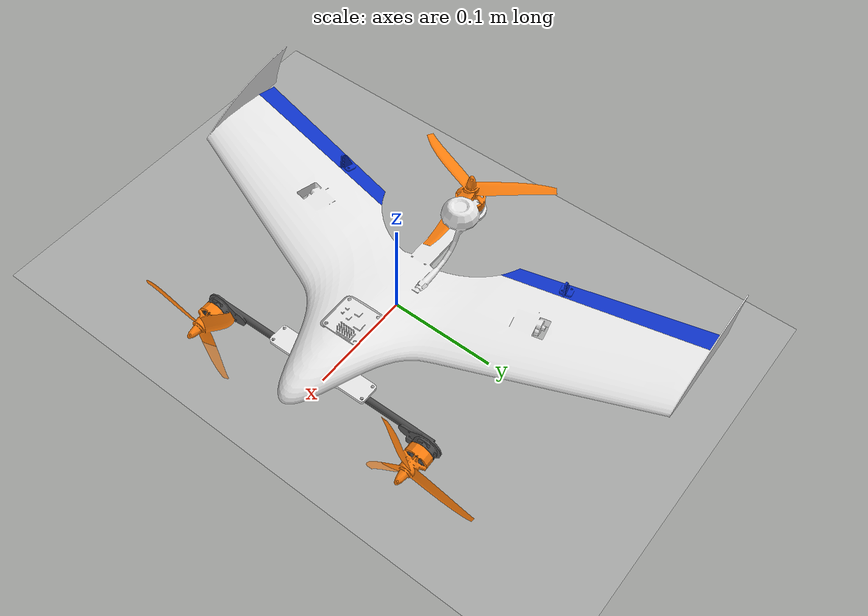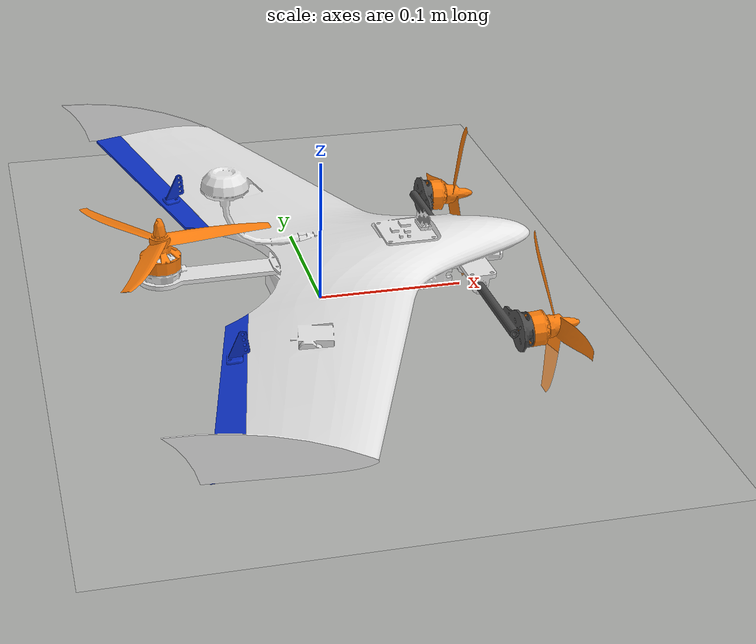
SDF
<sdf version="1.6">
 <world name="default">
  <model name="ground_plane">
   <static>1</static>
   <link name="link">
    <collision name="collision">
     <geometry><plane><normal>0 0 1</normal><size>100 100</size></plane></geometry>
     <surface>
      <contact><collide_bitmask>65535</collide_bitmask></contact>
      <friction><ode><mu>100</mu><mu2>50</mu2></ode></friction>
     </surface>
    </collision>
    <visual name="visual">
     <cast_shadows>0</cast_shadows>
     <geometry><plane><normal>0 0 1</normal><size>100 100</size></plane></geometry>
     <material>
      <script><uri>file://media/materials/scripts/gazebo.material</uri><name>Gazebo/Grey</name></script>
     </material>
    </visual>
   </link>
  </model>
  <model name="MiniHawk">
   <link name="link_1">
    <inertial>
     <mass>0.388</mass>
     <inertia>
      <ixx>0.107401</ixx>
      <ixy>-0.0018686</ixy>
      <ixz>-0.0144101</ixz>
      <iyy>0.176693</iyy>
      <iyz>-0.0010212</iyz>
      <izz>0.264048</izz>
     </inertia>
     <pose>0.013118 0.000197 0.004436 0 -0 0</pose>
    </inertial>
    <pose>0 0 0 3.14159 -0 0</pose>
    <visual name="visual">
     <geometry><mesh><uri>/home/steve/Desktop/OBJ2/MiniHawkBase.obj</uri><scale>1 1 1</scale></mesh></geometry>
     <material>
      <lighting>1</lighting>
      <script><uri>file://media/materials/scripts/gazebo.material</uri><name>Gazebo/White</name></script>
      <shader type="pixel"><normal_map>__default__</normal_map></shader>
      <emissive>0 0 0 1</emissive>
      <ambient>0.9 0.9 0.9 1</ambient>
      <diffuse>0.9 0.9 0.9 1</diffuse>
      <specular>0.01 0.01 0.01 1</specular>
     </material>
    </visual>
    <collision name="collision">
     <geometry><mesh><uri>/home/steve/Desktop/OBJ2/MiniHawkBase.obj</uri><scale>1 1 1</scale></mesh></geometry>
     <surface>
      <friction>
       <ode><mu>1</mu><mu2>1</mu2><fdir1>0 0 0</fdir1><slip1>0</slip1><slip2>0</slip2></ode>
       <torsional>
        <coefficient>1</coefficient>
        <patch_radius>0</patch_radius>
        <surface_radius>0</surface_radius>
        <use_patch_radius>1</use_patch_radius>
        <ode><slip>0</slip></ode>
       </torsional>
      </friction>
      <bounce><restitution_coefficient>0</restitution_coefficient><threshold>1e+06</threshold></bounce>
      <contact>
       <collide_without_contact>0</collide_without_contact>
       <collide_without_contact_bitmask>1</collide_without_contact_bitmask>
       <collide_bitmask>1</collide_bitmask>
       <ode>
        <soft_cfm>0</soft_cfm>
        <soft_erp>0.2</soft_erp>
        <kp>1e+13</kp>
        <kd>1</kd>
        <max_vel>0.01</max_vel>
        <min_depth>0</min_depth>
       </ode>
       <bullet>
        <split_impulse>1</split_impulse>
        <split_impulse_penetration_threshold>-0.01</split_impulse_penetration_threshold>
        <soft_cfm>0</soft_cfm>
        <soft_erp>0.2</soft_erp>
        <kp>1e+13</kp>
        <kd>1</kd>
       </bullet>
      </contact>
     </surface>
    </collision>
   </link>
   <link name="link_2">
    <inertial>
     <mass>0.002</mass>
     <inertia>
      <ixx>0.0059408</ixx>
      <ixy>-0.003228</ixy>
      <ixz>1.85e-05</ixz>
      <iyy>0.0018158</iyy>
      <iyz>3.22e-05</iyz>
      <izz>0.0077561</izz>
     </inertia>
     <pose>-0.094427 -0.164548 0.000979 0 -0 0</pose>
    </inertial>
    <pose>0 0 0 -3.14159 0 0</pose>
    <visual name="visual">
     <geometry>
      <mesh><uri>/home/steve/Desktop/OBJ2/MiniHawkElevonLeft.obj</uri><scale>1 1 1</scale></mesh>
     </geometry>
     <material>
      <lighting>1</lighting>
      <script><uri>file://media/materials/scripts/gazebo.material</uri><name>Gazebo/Grey</name></script>
      <shader type="pixel"><normal_map>__default__</normal_map></shader>
      <emissive>0 0 0 1</emissive>
      <ambient>0.05 0.2 0.8 1</ambient>
      <diffuse>0.05 0.2 0.8 1</diffuse>
      <specular>0.01 0.01 0.01 1</specular>
     </material>
    </visual>
    <collision name="collision">
     <geometry>
      <mesh><uri>/home/steve/Desktop/OBJ2/MiniHawkElevonLeft.obj</uri><scale>1 1 1</scale></mesh>
     </geometry>
     <surface>
      <friction>
       <ode><mu>1</mu><mu2>1</mu2><fdir1>0 0 0</fdir1><slip1>0</slip1><slip2>0</slip2></ode>
       <torsional>
        <coefficient>1</coefficient>
        <patch_radius>0</patch_radius>
        <surface_radius>0</surface_radius>
        <use_patch_radius>1</use_patch_radius>
        <ode><slip>0</slip></ode>
       </torsional>
      </friction>
      <bounce><restitution_coefficient>0</restitution_coefficient><threshold>1e+06</threshold></bounce>
      <contact>
       <collide_without_contact>0</collide_without_contact>
       <collide_without_contact_bitmask>1</collide_without_contact_bitmask>
       <collide_bitmask>1</collide_bitmask>
       <ode>
        <soft_cfm>0</soft_cfm>
        <soft_erp>0.2</soft_erp>
        <kp>1e+13</kp>
        <kd>1</kd>
        <max_vel>0.01</max_vel>
        <min_depth>0</min_depth>
       </ode>
       <bullet>
        <split_impulse>1</split_impulse>
        <split_impulse_penetration_threshold>-0.01</split_impulse_penetration_threshold>
        <soft_cfm>0</soft_cfm>
        <soft_erp>0.2</soft_erp>
        <kp>1e+13</kp>
        <kd>1</kd>
       </bullet>
      </contact>
     </surface>
    </collision>
   </link>
   <link name="link_3">
    <inertial>
     <mass>0.002</mass>
     <inertia>
      <ixx>0.0059408</ixx>
      <ixy>0.003228</ixy>
      <ixz>1.85e-05</ixz>
      <iyy>0.0018158</iyy>
      <iyz>-3.22e-05</iyz>
      <izz>0.0077561</izz>
     </inertia>
     <pose>-0.094427 0.164548 0.000979 0 -0 0</pose>
    </inertial>
    <pose>0 0 0 3.14159 -0 0</pose>
    <visual name="visual">
     <geometry>
      <mesh><uri>/home/steve/Desktop/OBJ2/MiniHawkElevonRight.obj</uri><scale>1 1 1</scale></mesh>
     </geometry>
     <material>
      <lighting>1</lighting>
      <script><uri>file://media/materials/scripts/gazebo.material</uri><name>Gazebo/Grey</name></script>
      <shader type="pixel"><normal_map>__default__</normal_map></shader>
      <emissive>0 0 0 1</emissive>
      <ambient>0.05 0.2 0.8 1</ambient>
      <diffuse>0.05 0.2 0.8 1</diffuse>
      <specular>0.01 0.01 0.01 1</specular>
     </material>
    </visual>
    <collision name="collision">
     <geometry>
      <mesh><uri>/home/steve/Desktop/OBJ2/MiniHawkElevonRight.obj</uri><scale>1 1 1</scale></mesh>
     </geometry>
     <surface>
      <friction>
       <ode><mu>1</mu><mu2>1</mu2><fdir1>0 0 0</fdir1><slip1>0</slip1><slip2>0</slip2></ode>
       <torsional>
        <coefficient>1</coefficient>
        <patch_radius>0</patch_radius>
        <surface_radius>0</surface_radius>
        <use_patch_radius>1</use_patch_radius>
        <ode><slip>0</slip></ode>
       </torsional>
      </friction>
      <bounce><restitution_coefficient>0</restitution_coefficient><threshold>1e+06</threshold></bounce>
      <contact>
       <collide_without_contact>0</collide_without_contact>
       <collide_without_contact_bitmask>1</collide_without_contact_bitmask>
       <collide_bitmask>1</collide_bitmask>
       <ode>
        <soft_cfm>0</soft_cfm>
        <soft_erp>0.2</soft_erp>
        <kp>1e+13</kp>
        <kd>1</kd>
        <max_vel>0.01</max_vel>
        <min_depth>0</min_depth>
       </ode>
       <bullet>
        <split_impulse>1</split_impulse>
        <split_impulse_penetration_threshold>-0.01</split_impulse_penetration_threshold>
        <soft_cfm>0</soft_cfm>
        <soft_erp>0.2</soft_erp>
        <kp>1e+13</kp>
        <kd>1</kd>
       </bullet>
      </contact>
     </surface>
    </collision>
   </link>
   <link name="link_4">
    <inertial>
     <mass>0.014</mass>
     <inertia>
      <ixx>0.0146583</ixx>
      <ixy>0.0148643</ixy>
      <ixz>-0.0019927</ixz>
      <iyy>0.0164121</iyy>
      <iyz>0.0018312</iyz>
      <izz>0.0305175</izz>
     </inertia>
     <pose>0.108611 -0.099554 0.013446 0 -0 0</pose>
    </inertial>
    <pose>0 0 0 3.14159 -0 0</pose>
    <visual name="visual">
     <geometry><mesh><uri>/home/steve/Desktop/OBJ2/MiniHawkArm.obj</uri><scale>1 1 1</scale></mesh></geometry>
     <material>
      <lighting>1</lighting>
      <script><uri>file://media/materials/scripts/gazebo.material</uri><name>Gazebo/DarkGrey</name></script>
      <shader type="pixel"><normal_map>__default__</normal_map></shader>
     </material>
    </visual>
    <collision name="collision">
     <geometry><mesh><uri>/home/steve/Desktop/OBJ2/MiniHawkArm.obj</uri><scale>1 1 1</scale></mesh></geometry>
     <surface>
      <friction>
       <ode><mu>1</mu><mu2>1</mu2><fdir1>0 0 0</fdir1><slip1>0</slip1><slip2>0</slip2></ode>
       <torsional>
        <coefficient>1</coefficient>
        <patch_radius>0</patch_radius>
        <surface_radius>0</surface_radius>
        <use_patch_radius>1</use_patch_radius>
        <ode><slip>0</slip></ode>
       </torsional>
      </friction>
      <bounce><restitution_coefficient>0</restitution_coefficient><threshold>1e+06</threshold></bounce>
      <contact>
       <collide_without_contact>0</collide_without_contact>
       <collide_without_contact_bitmask>1</collide_without_contact_bitmask>
       <collide_bitmask>1</collide_bitmask>
       <ode>
        <soft_cfm>0</soft_cfm>
        <soft_erp>0.2</soft_erp>
        <kp>1e+13</kp>
        <kd>1</kd>
        <max_vel>0.01</max_vel>
        <min_depth>0</min_depth>
       </ode>
       <bullet>
        <split_impulse>1</split_impulse>
        <split_impulse_penetration_threshold>-0.01</split_impulse_penetration_threshold>
        <soft_cfm>0</soft_cfm>
        <soft_erp>0.2</soft_erp>
        <kp>1e+13</kp>
        <kd>1</kd>
       </bullet>
      </contact>
     </surface>
    </collision>
   </link>
   <link name="link_5">
    <inertial>
     <mass>0.014</mass>
     <inertia>
      <ixx>0.0146583</ixx>
      <ixy>0.0148643</ixy>
      <ixz>-0.0019927</ixz>
      <iyy>0.0164121</iyy>
      <iyz>0.0018312</iyz>
      <izz>0.0305175</izz>
     </inertia>
     <pose>0.108611 -0.099554 0.013446 0 -0 0</pose>
    </inertial>
    <pose>0 0 -0.026 0 -0 0</pose>
    <visual name="visual">
     <geometry><mesh><uri>/home/steve/Desktop/OBJ2/MiniHawkArm.obj</uri><scale>1 1 1</scale></mesh></geometry>
     <material>
      <lighting>1</lighting>
      <script><uri>file://media/materials/scripts/gazebo.material</uri><name>Gazebo/DarkGrey</name></script>
      <shader type="pixel"><normal_map>__default__</normal_map></shader>
     </material>
    </visual>
    <collision name="collision">
     <geometry><mesh><uri>/home/steve/Desktop/OBJ2/MiniHawkArm.obj</uri><scale>1 1 1</scale></mesh></geometry>
     <surface>
      <friction>
       <ode><mu>1</mu><mu2>1</mu2><fdir1>0 0 0</fdir1><slip1>0</slip1><slip2>0</slip2></ode>
       <torsional>
        <coefficient>1</coefficient>
        <patch_radius>0</patch_radius>
        <surface_radius>0</surface_radius>
        <use_patch_radius>1</use_patch_radius>
        <ode><slip>0</slip></ode>
       </torsional>
      </friction>
      <bounce><restitution_coefficient>0</restitution_coefficient><threshold>1e+06</threshold></bounce>
      <contact>
       <collide_without_contact>0</collide_without_contact>
       <collide_without_contact_bitmask>1</collide_without_contact_bitmask>
       <collide_bitmask>1</collide_bitmask>
       <ode>
        <soft_cfm>0</soft_cfm>
        <soft_erp>0.2</soft_erp>
        <kp>1e+13</kp>
        <kd>1</kd>
        <max_vel>0.01</max_vel>
        <min_depth>0</min_depth>
       </ode>
       <bullet>
        <split_impulse>1</split_impulse>
        <split_impulse_penetration_threshold>-0.01</split_impulse_penetration_threshold>
        <soft_cfm>0</soft_cfm>
        <soft_erp>0.2</soft_erp>
        <kp>1e+13</kp>
        <kd>1</kd>
       </bullet>
      </contact>
     </surface>
    </collision>
   </link>
   <link name="link_6">
    <inertial>
     <mass>0.016</mass>
     <inertia>
      <ixx>0.0005953</ixx>
      <ixy>0</ixy>
      <ixz>-0.0028139</ixz>
      <iyy>0.0199553</iyy>
      <iyz>0</iyz>
      <izz>0.0194985</izz>
     </inertia>
     <pose>-0.11 0 -0.015988 0 -0 0</pose>
    </inertial>
    <pose>0 0 0 3.14159 -0 0</pose>
    <visual name="visual">
     <geometry><mesh><uri>/home/steve/Desktop/OBJ2/MiniHawkPropB.obj</uri><scale>1 1 1</scale></mesh></geometry>
     <material>
      <lighting>1</lighting>
      <script><uri>file://media/materials/scripts/gazebo.material</uri><name>Gazebo/Grey</name></script>
      <shader type="pixel"><normal_map>__default__</normal_map></shader>
      <ambient>1 0.5 0.05 1</ambient>
      <diffuse>1 0.5 0.05 1</diffuse>
      <specular>0.5 0.5 0.5 1</specular>
      <emissive>0 0 0 1</emissive>
     </material>
    </visual>
    <collision name="collision">
     <geometry><mesh><uri>/home/steve/Desktop/OBJ2/MiniHawkPropB.obj</uri><scale>1 1 1</scale></mesh></geometry>
     <surface>
      <friction>
       <ode><mu>1</mu><mu2>1</mu2><fdir1>0 0 0</fdir1><slip1>0</slip1><slip2>0</slip2></ode>
       <torsional>
        <coefficient>1</coefficient>
        <patch_radius>0</patch_radius>
        <surface_radius>0</surface_radius>
        <use_patch_radius>1</use_patch_radius>
        <ode><slip>0</slip></ode>
       </torsional>
      </friction>
      <bounce><restitution_coefficient>0</restitution_coefficient><threshold>1e+06</threshold></bounce>
      <contact>
       <collide_without_contact>0</collide_without_contact>
       <collide_without_contact_bitmask>1</collide_without_contact_bitmask>
       <collide_bitmask>1</collide_bitmask>
       <ode>
        <soft_cfm>0</soft_cfm>
        <soft_erp>0.2</soft_erp>
        <kp>1e+13</kp>
        <kd>1</kd>
        <max_vel>0.01</max_vel>
        <min_depth>0</min_depth>
       </ode>
       <bullet>
        <split_impulse>1</split_impulse>
        <split_impulse_penetration_threshold>-0.01</split_impulse_penetration_threshold>
        <soft_cfm>0</soft_cfm>
        <soft_erp>0.2</soft_erp>
        <kp>1e+13</kp>
        <kd>1</kd>
       </bullet>
      </contact>
     </surface>
    </collision>
   </link>
   <link name="link_7">
    <inertial>
     <mass>0.012</mass>
     <inertia>
      <ixx>0.0146902</ixx>
      <ixy>0.0160783</ixy>
      <ixz>-0.0020598</ixz>
      <iyy>0.0185055</iyy>
      <iyz>0.0018297</iyz>
      <izz>0.0325512</izz>
     </inertia>
     <pose>0.123851 -0.109999 0.014094 0 -0 0</pose>
    </inertial>
    <pose>0 0 0 3.14159 -0 0</pose>
    <visual name="visual">
     <geometry><mesh><uri>/home/steve/Desktop/OBJ2/MiniHawkPropA.obj</uri><scale>1 1 1</scale></mesh></geometry>
     <material>
      <lighting>1</lighting>
      <script><uri>file://media/materials/scripts/gazebo.material</uri><name>Gazebo/Grey</name></script>
      <shader type="pixel"><normal_map>__default__</normal_map></shader>
      <ambient>1 0.5 0.05 1</ambient>
      <diffuse>1 0.5 0.05 1</diffuse>
      <specular>0.5 0.5 0.5 1</specular>
      <emissive>0 0 0 1</emissive>
     </material>
    </visual>
    <collision name="collision">
     <geometry><mesh><uri>/home/steve/Desktop/OBJ2/MiniHawkPropA.obj</uri><scale>1 1 1</scale></mesh></geometry>
     <surface>
      <friction>
       <ode><mu>1</mu><mu2>1</mu2><fdir1>0 0 0</fdir1><slip1>0</slip1><slip2>0</slip2></ode>
       <torsional>
        <coefficient>1</coefficient>
        <patch_radius>0</patch_radius>
        <surface_radius>0</surface_radius>
        <use_patch_radius>1</use_patch_radius>
        <ode><slip>0</slip></ode>
       </torsional>
      </friction>
      <bounce><restitution_coefficient>0</restitution_coefficient><threshold>1e+06</threshold></bounce>
      <contact>
       <collide_without_contact>0</collide_without_contact>
       <collide_without_contact_bitmask>1</collide_without_contact_bitmask>
       <collide_bitmask>1</collide_bitmask>
       <ode>
        <soft_cfm>0</soft_cfm>
        <soft_erp>0.2</soft_erp>
        <kp>1e+13</kp>
        <kd>1</kd>
        <max_vel>0.01</max_vel>
        <min_depth>0</min_depth>
       </ode>
       <bullet>
        <split_impulse>1</split_impulse>
        <split_impulse_penetration_threshold>-0.01</split_impulse_penetration_threshold>
        <soft_cfm>0</soft_cfm>
        <soft_erp>0.2</soft_erp>
        <kp>1e+13</kp>
        <kd>1</kd>
       </bullet>
      </contact>
     </surface>
    </collision>
   </link>
   <link name="link_8">
    <inertial>
     <mass>0.012</mass>
     <inertia>
      <ixx>0.0146902</ixx>
      <ixy>0.0160783</ixy>
      <ixz>-0.0020598</ixz>
      <iyy>0.0185055</iyy>
      <iyz>0.0018297</iyz>
      <izz>0.0325512</izz>
     </inertia>
     <pose>0.123851 -0.109999 0.014094 0 -0 0</pose>
    </inertial>
    <pose>0 0 -0.02635 0 -0 0</pose>
    <visual name="visual">
     <geometry><mesh><uri>/home/steve/Desktop/OBJ2/MiniHawkPropA.obj</uri><scale>1 1 1</scale></mesh></geometry>
     <material>
      <lighting>1</lighting>
      <script><uri>file://media/materials/scripts/gazebo.material</uri><name>Gazebo/Grey</name></script>
      <shader type="pixel"><normal_map>__default__</normal_map></shader>
      <ambient>1 0.5 0.05 1</ambient>
      <diffuse>1 0.5 0.05 1</diffuse>
      <specular>0.5 0.5 0.5 1</specular>
      <emissive>0 0 0 1</emissive>
     </material>
    </visual>
    <collision name="collision">
     <geometry><mesh><uri>/home/steve/Desktop/OBJ2/MiniHawkPropA.obj</uri><scale>1 1 1</scale></mesh></geometry>
     <surface>
      <friction>
       <ode><mu>1</mu><mu2>1</mu2><fdir1>0 0 0</fdir1><slip1>0</slip1><slip2>0</slip2></ode>
       <torsional>
        <coefficient>1</coefficient>
        <patch_radius>0</patch_radius>
        <surface_radius>0</surface_radius>
        <use_patch_radius>1</use_patch_radius>
        <ode><slip>0</slip></ode>
       </torsional>
      </friction>
      <bounce><restitution_coefficient>0</restitution_coefficient><threshold>1e+06</threshold></bounce>
      <contact>
       <collide_without_contact>0</collide_without_contact>
       <collide_without_contact_bitmask>1</collide_without_contact_bitmask>
       <collide_bitmask>1</collide_bitmask>
       <ode>
        <soft_cfm>0</soft_cfm>
        <soft_erp>0.2</soft_erp>
        <kp>1e+13</kp>
        <kd>1</kd>
        <max_vel>0.01</max_vel>
        <min_depth>0</min_depth>
       </ode>
       <bullet>
        <split_impulse>1</split_impulse>
        <split_impulse_penetration_threshold>-0.01</split_impulse_penetration_threshold>
        <soft_cfm>0</soft_cfm>
        <soft_erp>0.2</soft_erp>
        <kp>1e+13</kp>
        <kd>1</kd>
       </bullet>
      </contact>
     </surface>
    </collision>
   </link>
   <joint name="link_1_JOINT_0" type="revolute">
    <parent>link_1</parent>
    <child>link_6</child>
    <pose>-0.11 0 0 0 -0 0</pose>
    <axis>
     <xyz>0 0 1</xyz>
     <use_parent_model_frame>0</use_parent_model_frame>
     <limit>
      <lower>-1.79769e+308</lower>
      <upper>1.79769e+308</upper>
      <effort>-1</effort>
      <velocity>-1</velocity>
     </limit>
     <dynamics>
      <spring_reference>0</spring_reference>
      <spring_stiffness>0</spring_stiffness>
      <damping>0</damping>
      <friction>0</friction>
     </dynamics>
    </axis>
    <physics>
     <ode><limit><cfm>0</cfm><erp>0.2</erp></limit><suspension><cfm>0</cfm><erp>0.2</erp></suspension></ode>
    </physics>
   </joint>
   <joint name="link_1_JOINT_1" type="revolute">
    <parent>link_1</parent>
    <child>link_2</child>
    <pose>-0.064008 -0.065469 0.002308 0 -0 0</pose>
    <axis>
     <xyz>0.039484 0.184531 0.002244</xyz>
     <use_parent_model_frame>0</use_parent_model_frame>
     <limit><lower>-0.79</lower><upper>0.52</upper><effort>-1</effort><velocity>-1</velocity></limit>
     <dynamics>
      <spring_reference>0</spring_reference>
      <spring_stiffness>0</spring_stiffness>
      <damping>0</damping>
      <friction>0</friction>
     </dynamics>
    </axis>
    <physics>
     <ode><limit><cfm>0</cfm><erp>0.2</erp></limit><suspension><cfm>0</cfm><erp>0.2</erp></suspension></ode>
    </physics>
   </joint>
   <joint name="link_1_JOINT_2" type="revolute">
    <parent>link_1</parent>
    <child>link_3</child>
    <pose>-0.064008 0.065469 0.002308 0 -0 0</pose>
    <axis>
     <xyz>0.039484 -0.184531 0.002244</xyz>
     <use_parent_model_frame>0</use_parent_model_frame>
     <limit><lower>-0.52</lower><upper>0.79</upper><effort>-1</effort><velocity>-1</velocity></limit>
     <dynamics>
      <spring_reference>0</spring_reference>
      <spring_stiffness>0</spring_stiffness>
      <damping>0</damping>
      <friction>0</friction>
     </dynamics>
    </axis>
    <physics>
     <ode><limit><cfm>0</cfm><erp>0.2</erp></limit><suspension><cfm>0</cfm><erp>0.2</erp></suspension></ode>
    </physics>
   </joint>
   <joint name="link_1_JOINT_3" type="revolute">
    <parent>link_1</parent>
    <child>link_4</child>
    <pose>0.1 0 0.013 0 -0 0</pose>
    <axis>
     <xyz>0 1 0</xyz>
     <use_parent_model_frame>0</use_parent_model_frame>
     <limit><lower>-0</lower><upper>1.6581</upper><effort>-1</effort><velocity>-1</velocity></limit>
     <dynamics>
      <spring_reference>0</spring_reference>
      <spring_stiffness>0</spring_stiffness>
      <damping>0</damping>
      <friction>0</friction>
     </dynamics>
    </axis>
    <physics>
     <ode><limit><cfm>0</cfm><erp>0.2</erp></limit><suspension><cfm>0</cfm><erp>0.2</erp></suspension></ode>
    </physics>
   </joint>
   <joint name="link_1_JOINT_4" type="revolute">
    <parent>link_1</parent>
    <child>link_5</child>
    <pose>0.1 0 0.013 0 -0 0</pose>
    <axis>
     <xyz>0 1 0</xyz>
     <use_parent_model_frame>0</use_parent_model_frame>
     <limit><lower>-1.6581</lower><upper>0</upper><effort>-1</effort><velocity>-1</velocity></limit>
     <dynamics>
      <spring_reference>0</spring_reference>
      <spring_stiffness>0</spring_stiffness>
      <damping>0</damping>
      <friction>0</friction>
     </dynamics>
    </axis>
    <physics>
     <ode><limit><cfm>0</cfm><erp>0.2</erp></limit><suspension><cfm>0</cfm><erp>0.2</erp></suspension></ode>
    </physics>
   </joint>
   <joint name="link_4_JOINT_1" type="revolute">
    <parent>link_4</parent>
    <child>link_7</child>
    <pose>0.103821 -0.11 0.013175 0 -0 0</pose>
    <axis>
     <xyz>1 0 0</xyz>
     <use_parent_model_frame>0</use_parent_model_frame>
     <limit>
      <lower>-1.79769e+308</lower>
      <upper>1.79769e+308</upper>
      <effort>-1</effort>
      <velocity>-1</velocity>
     </limit>
     <dynamics>
      <spring_reference>0</spring_reference>
      <spring_stiffness>0</spring_stiffness>
      <damping>0</damping>
      <friction>0</friction>
     </dynamics>
    </axis>
    <physics>
     <ode><limit><cfm>0</cfm><erp>0.2</erp></limit><suspension><cfm>0</cfm><erp>0.2</erp></suspension></ode>
    </physics>
   </joint>
   <joint name="link_5_JOINT_1" type="revolute">
    <parent>link_5</parent>
    <child>link_8</child>
    <pose>0.103821 -0.11 0.013175 0 -0 0</pose>
    <axis>
     <xyz>1 0 0</xyz>
     <use_parent_model_frame>0</use_parent_model_frame>
     <limit>
      <lower>-1.79769e+308</lower>
      <upper>1.79769e+308</upper>
      <effort>-1</effort>
      <velocity>-1</velocity>
     </limit>
     <dynamics>
      <spring_reference>0</spring_reference>
      <spring_stiffness>0</spring_stiffness>
      <damping>0</damping>
      <friction>0</friction>
     </dynamics>
    </axis>
    <physics>
     <ode><limit><cfm>0</cfm><erp>0.2</erp></limit><suspension><cfm>0</cfm><erp>0.2</erp></suspension></ode>
    </physics>
   </joint>
   <static>0</static>
   <pose>0.000237 -0.000158 0.031599 2e-06 -2e-06 0.016738</pose>
  </model>
 </world>
</sdf>
